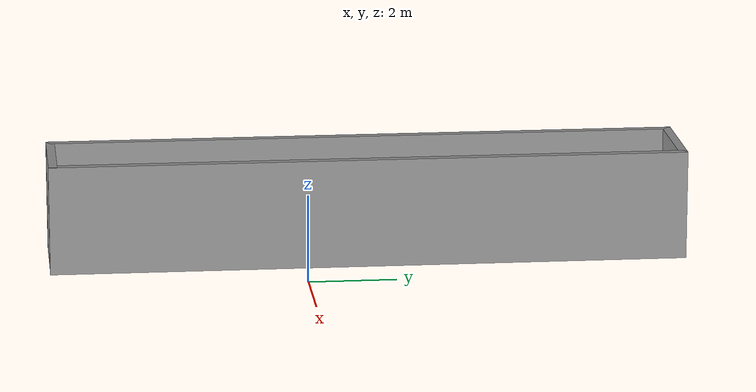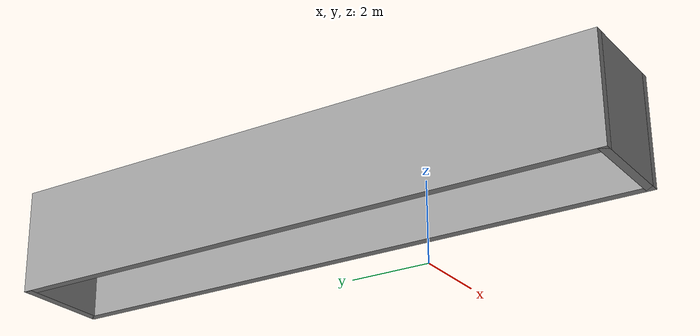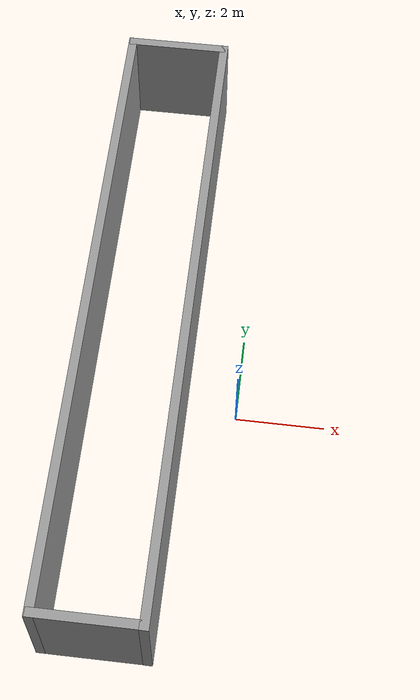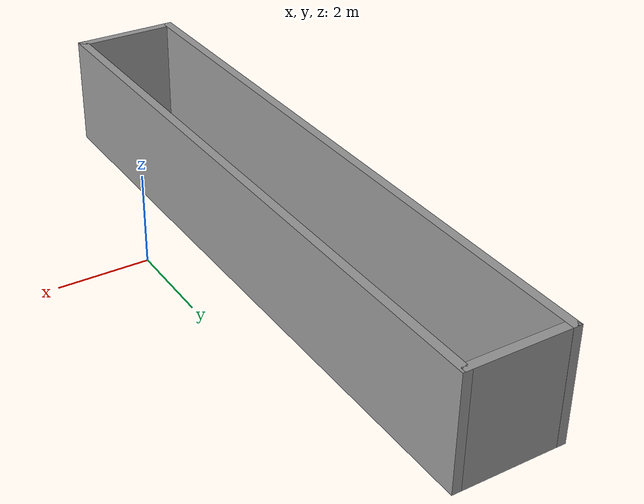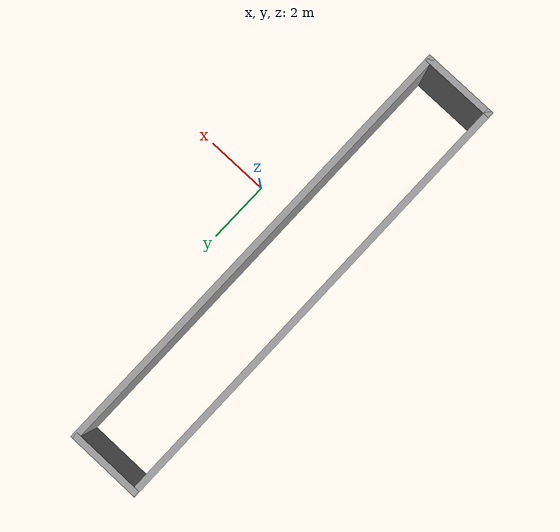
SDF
<?xml version='1.0'?>
<sdf version='1.4'>
  <model name='simple_long_corridor'>
    <link name='Wall_0'>
      <collision name='Wall_0_Collision'>
        <geometry>
          <box>
            <size>14.5665 0.2 2.5</size>
          </box>
        </geometry>
        <pose>0 0 1.25 0 -0 0</pose>
      </collision>
      <visual name='Wall_0_Visual'>
        <pose>0 0 1.25 0 -0 0</pose>
        <geometry>
          <box>
            <size>14.5665 0.2 2.5</size>
          </box>
        </geometry>
        <material>
          <script>
            <uri>file://media/materials/scripts/gazebo.material</uri>
            <name>Gazebo/Grey</name>
          </script>
        </material>
      </visual>
      <velocity_decay>
        <linear>0</linear>
        <angular>0</angular>
      </velocity_decay>
      <pose>-3.47 1.52109 0 0 -0 1.5708</pose>
    </link>
    <link name='Wall_2'>
      <collision name='Wall_2_Collision'>
        <geometry>
          <box>
            <size>14.5683 0.2 2.5</size>
          </box>
        </geometry>
        <pose>0 0 1.25 0 -0 0</pose>
      </collision>
      <visual name='Wall_2_Visual'>
        <pose>0 0 1.25 0 -0 0</pose>
        <geometry>
          <box>
            <size>14.5683 0.2 2.5</size>
          </box>
        </geometry>
        <material>
          <script>
            <uri>file://media/materials/scripts/gazebo.material</uri>
            <name>Gazebo/Grey</name>
          </script>
        </material>
      </visual>
      <velocity_decay>
        <linear>0</linear>
        <angular>0</angular>
      </velocity_decay>
      <pose>-1.2412 1.51792 0 0 -0 1.5708</pose>
    </link>
    <link name='Wall_4'>
      <collision name='Wall_4_Collision'>
        <geometry>
          <box>
            <size>2.38122 0.2 2.5</size>
          </box>
        </geometry>
        <pose>0 0 1.25 0 -0 0</pose>
      </collision>
      <visual name='Wall_4_Visual'>
        <pose>0 0 1.25 0 -0 0</pose>
        <geometry>
          <box>
            <size>2.38122 0.2 2.5</size>
          </box>
        </geometry>
        <material>
          <script>
            <uri>file://media/materials/scripts/gazebo.material</uri>
            <name>Gazebo/Grey</name>
          </script>
        </material>
      </visual>
      <velocity_decay>
        <linear>0</linear>
        <angular>0</angular>
      </velocity_decay>
      <pose>-2.3584 -5.66205 0 0 -0 0</pose>
    </link>
    <link name='Wall_6'>
      <collision name='Wall_6_Collision'>
        <geometry>
          <box>
            <size>2.35462 0.2 2.5</size>
          </box>
        </geometry>
        <pose>0 0 1.25 0 -0 0</pose>
      </collision>
      <visual name='Wall_6_Visual'>
        <pose>0 0 1.25 0 -0 0</pose>
        <geometry>
          <box>
            <size>2.35462 0.2 2.5</size>
          </box>
        </geometry>
        <material>
          <script>
            <uri>file://media/materials/scripts/gazebo.material</uri>
            <name>Gazebo/Grey</name>
          </script>
        </material>
      </visual>
      <velocity_decay>
        <linear>0</linear>
        <angular>0</angular>
      </velocity_decay>
      <pose>-2.3717 8.70205 0 0 -0 0</pose>
    </link>
    <static>1</static>
  </model>
</sdf>
